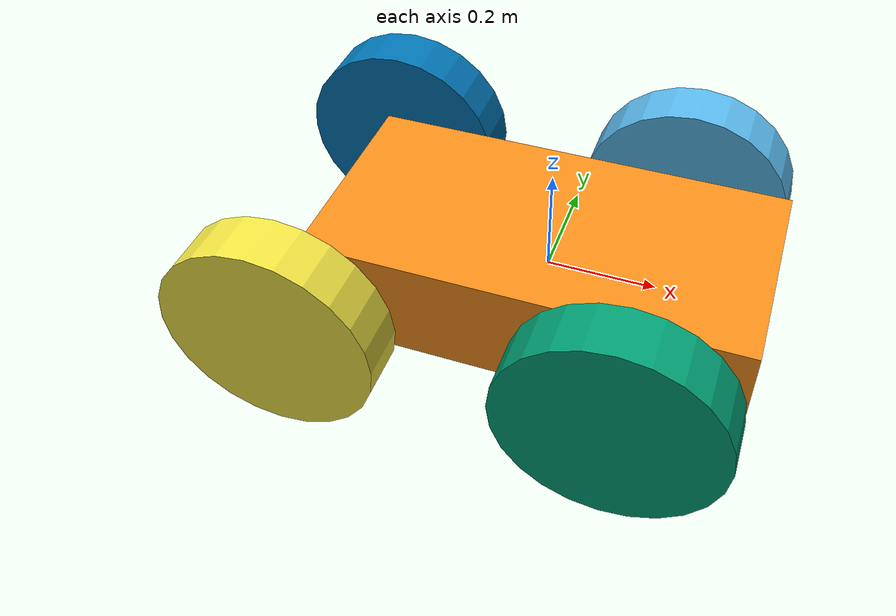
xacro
<?xml version='1.0'?>

<robot name="myrobot" xmlns:xacro="http://www.ros.org/wiki/xacro">

  <xacro:include filename="$(find mybot_description)/urdf/mybot.gazebo" />
  <xacro:include filename="$(find mybot_description)/urdf/materials.xacro" />
  <xacro:include filename="$(find mybot_description)/urdf/macros.xacro" />

 <!-- TEST -->
  <link name='chassis'>
    <pose>0 0 0.9 0 0 0</pose>

    <inertial>
      <mass value="10.0"/>
      <origin xyz="0.0 0 0.1" rpy=" 0 0 0"/>
      <inertia
          ixx="0.5" ixy="0" ixz="0"
          iyy="1.0" iyz="0"
          izz="0.1"
      />
    </inertial>

    <collision name='collision'>
      <geometry>
        <box size=".8 .4 .2"/>
      </geometry>
    </collision>

    <visual name='chassis_visual'>
      <origin xyz="0 0 0" rpy=" 0 0 0"/>
      <geometry>
        <box size=".8 .4 .2"/>
      </geometry>
    </visual>

    <collision name='caster_collision'>
      <origin xyz="-0.15 0 -0.05" rpy=" 0 0 0"/>
      <geometry>
        <sphere radius="0.1"/>
      </geometry>
      <surface>
        <friction>
          <ode>
            <mu>0</mu>
            <mu2>0</mu2>
            <slip1>1.0</slip1>
            <slip2>1.0</slip2>
          </ode>
        </friction>
      </surface>
    </collision>

    <visual name='caster_visual'>
      <origin xyz="-0.15 0 -0.05" rpy=" 0 0 0"/>
      <geometry>
        <sphere radius="0.1"/>
      </geometry>
    </visual>
  </link>

  <link name="left_wheel">
    <!--origin xyz="0.1 0.13 0.1" rpy="0 1.5707 1.5707"/-->
    <collision name="collision">
      <origin xyz="0 0 0" rpy="0 1.5707 1.5707"/>
      <geometry>
        <cylinder radius="0.2" length="0.1"/>
      </geometry>
    </collision>
    <visual name="left_wheel_visual">
      <origin xyz="0 0 0" rpy="0 1.5707 1.5707"/>
      <geometry>
        <cylinder radius="0.2" length="0.1"/>
      </geometry>
    </visual>
    <inertial>
      <origin xyz="0 0 0" rpy="0 1.5707 1.5707"/>
      <mass value="5"/>
      <cylinder_inertia m="5" r="0.1" h="0.1"/>
      <inertia
        ixx="1.0" ixy="0.0" ixz="0.0"
        iyy="1.0" iyz="0.0"
        izz="1.0"/>
    </inertial>
  </link>

  <link name="right_wheel">
    <!--origin xyz="0.1 -0.13 0.1" rpy="0 1.5707 1.5707"/-->
    <collision name="collision">
      <origin xyz="0 0 0" rpy="0 1.5707 1.5707"/>
      <geometry>
        <cylinder radius="0.2" length="0.1"/>
      </geometry>
    </collision>
    <visual name="right_backwheel_visual">
      <origin xyz="0 0 0" rpy="0 1.5707 1.5707"/>
      <geometry>
        <cylinder radius="0.2" length="0.1"/>
      </geometry>
    </visual>
    <inertial>
      <origin xyz="0 0 0" rpy="0 1.5707 1.5707"/>
      <mass value="5"/>
      <cylinder_inertia m="5" r="0.1" h="0.1"/>
      <inertia
        ixx="1.0" ixy="0.0" ixz="0.0"
        iyy="1.0" iyz="0.0"
        izz="1.0"/>
    </inertial>
  </link>

<link name="right_backwheel">
    <!--origin xyz="0.1 -0.13 0.1" rpy="0 1.5707 1.5707"/-->
    <collision name="collision">
      <origin xyz="0 0 0" rpy="0 1.5707 1.5707"/>
      <geometry>
        <cylinder radius="0.2" length="0.1"/>
      </geometry>
    </collision>
    <visual name="right_backwheel_visual">
      <origin xyz="0 0 0" rpy="0 1.5707 1.5707"/>
      <geometry>
        <cylinder radius="0.2" length="0.1"/>
      </geometry>
    </visual>
    <inertial>
      <origin xyz="0 0 0" rpy="0 1.5707 1.5707"/>
      <mass value="5"/>
      <cylinder_inertia m="5" r="0.1" h="0.1"/>
      <inertia
        ixx="1.0" ixy="0.0" ixz="0.0"
        iyy="1.0" iyz="0.0"
        izz="1.0"/>
    </inertial>
  </link>

<link name="left_backwheel">
    <!--origin xyz="0.1 -0.13 0.1" rpy="0 1.5707 1.5707"/-->
    <collision name="collision">
      <origin xyz="0 0 0" rpy="0 1.5707 1.5707"/>
      <geometry>
        <cylinder radius="0.2" length="0.01"/>
      </geometry>
    </collision>
    <visual name="left_backwheel_visual">
      <origin xyz="0 0 0" rpy="0 1.5707 1.5707"/>
      <geometry>
        <cylinder radius="0.2" length="0.1"/>
      </geometry>
    </visual>
    <inertial>
      <origin xyz="0 0 0" rpy="0 1.5707 1.5707"/>
      <mass value="5"/>
      <cylinder_inertia m="5" r="0.1" h="0.1"/>
      <inertia
        ixx="1.0" ixy="0.0" ixz="0.0"
        iyy="1.0" iyz="0.0"
        izz="1.0"/>
    </inertial>
  </link>

<joint type="continuous" name="right_backwheel_hinge">
    <origin xyz="-0.4 -0.3 0" rpy="0 0 0"/>
    <child link="right_backwheel"/>
    <parent link="chassis"/>
    <axis xyz="0 1 0" rpy="0 0 0"/>
    <limit effort="100" velocity="100"/>
    <joint_properties damping="0.0" friction="0.0"/>
  </joint>

 <joint type="continuous" name="left_backwheel_hinge">
    <origin xyz="-0.4 0.3 0" rpy="0 0 0"/>
    <child link="left_backwheel"/>
    <parent link="chassis"/>
    <axis xyz="0 1 0" rpy="0 0 0"/>
    <limit effort="100" velocity="100"/>
    <joint_properties damping="0.0" friction="0.0"/>
  </joint>

  <joint type="continuous" name="left_wheel_hinge">
    <origin xyz="0.2 0.3 0" rpy="0 0 0"/>
    <child link="left_wheel"/>
    <parent link="chassis"/>
    <axis xyz="0 1 0" rpy="0 0 0"/>
    <limit effort="100" velocity="100"/>
    <joint_properties damping="0.0" friction="0.0"/>
  </joint>

  <joint type="continuous" name="right_wheel_hinge">
    <origin xyz="0.2 -0.3 0" rpy="0 0 0"/>
    <child link="right_wheel"/>
    <parent link="chassis"/>
    <axis xyz="0 1 0" rpy="0 0 0"/>
    <limit effort="100" velocity="100"/>
    <joint_properties damping="0.0" friction="0.0"/>
  </joint>

</robot>
